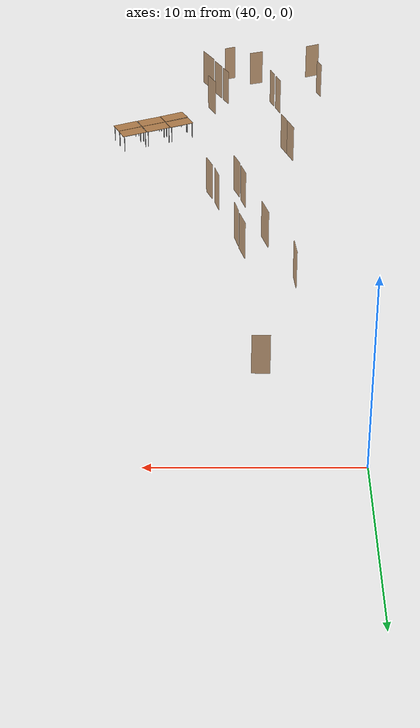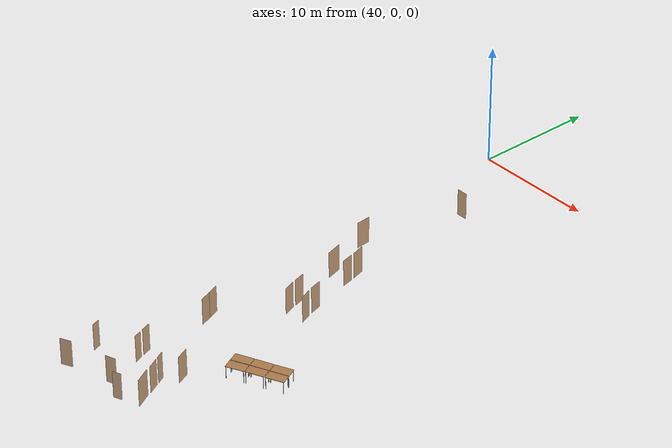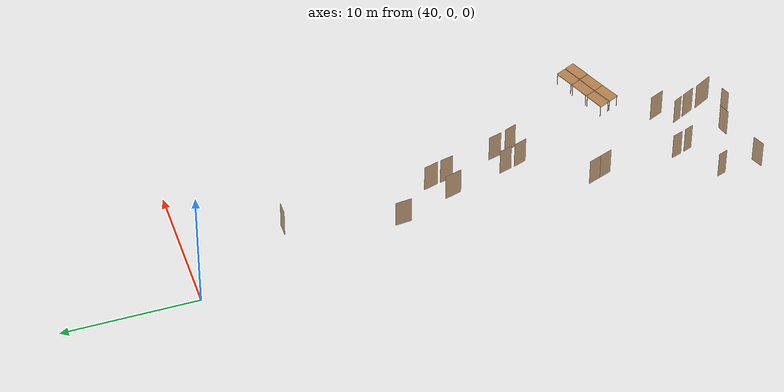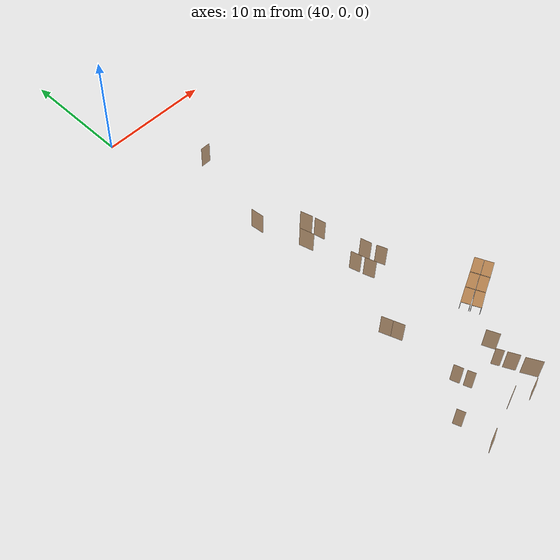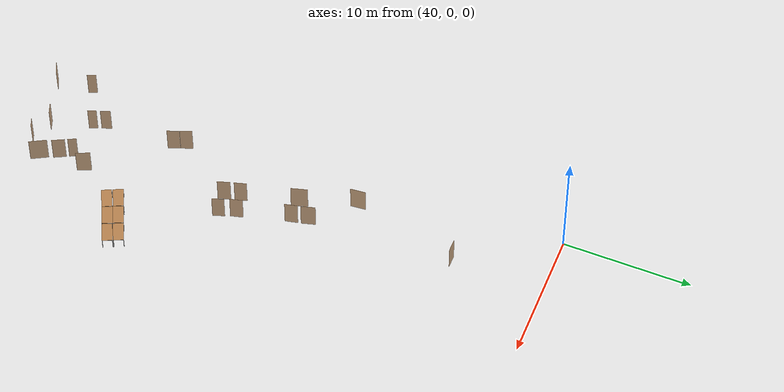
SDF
<sdf version="1.7">
 <world name="world">
  <model name="OpenRobotics/Table_3">
   <static>1</static>
   <link name="link">
    <collision name="surface">
     <pose>0 0 1 0 -0 0</pose>
     <geometry><box><size>1.5 0.8 0.03</size></box></geometry>
     <surface><friction><ode><mu>0.6</mu><mu2>0.6</mu2></ode></friction></surface>
    </collision>
    <visual name="visual1">
     <pose>0 0 1 0 -0 0</pose>
     <geometry><box><size>1.5 0.8 0.03</size></box></geometry>
     <material>
      <script><uri>file://media/materials/scripts/gazebo.material</uri><name>Gazebo/Wood</name></script>
     </material>
    </visual>
    <collision name="front_left_leg">
     <pose>0.68 0.38 0.5 0 -0 0</pose>
     <geometry><cylinder><radius>0.02</radius><length>1</length></cylinder></geometry>
    </collision>
    <visual name="front_left_leg">
     <pose>0.68 0.38 0.5 0 -0 0</pose>
     <geometry><cylinder><radius>0.02</radius><length>1</length></cylinder></geometry>
     <material>
      <script><uri>file://media/materials/scripts/gazebo.material</uri><name>Gazebo/Grey</name></script>
     </material>
    </visual>
    <collision name="front_right_leg">
     <pose>0.68 -0.38 0.5 0 -0 0</pose>
     <geometry><cylinder><radius>0.02</radius><length>1</length></cylinder></geometry>
    </collision>
    <visual name="front_right_leg">
     <pose>0.68 -0.38 0.5 0 -0 0</pose>
     <geometry><cylinder><radius>0.02</radius><length>1</length></cylinder></geometry>
     <material>
      <script><uri>file://media/materials/scripts/gazebo.material</uri><name>Gazebo/Grey</name></script>
     </material>
    </visual>
    <collision name="back_right_leg">
     <pose>-0.68 -0.38 0.5 0 -0 0</pose>
     <geometry><cylinder><radius>0.02</radius><length>1</length></cylinder></geometry>
    </collision>
    <visual name="back_right_leg">
     <pose>-0.68 -0.38 0.5 0 -0 0</pose>
     <geometry><cylinder><radius>0.02</radius><length>1</length></cylinder></geometry>
     <material>
      <script><uri>file://media/materials/scripts/gazebo.material</uri><name>Gazebo/Grey</name></script>
     </material>
    </visual>
    <collision name="back_left_leg">
     <pose>-0.68 0.38 0.5 0 -0 0</pose>
     <geometry><cylinder><radius>0.02</radius><length>1</length></cylinder></geometry>
    </collision>
    <visual name="back_left_leg">
     <pose>-0.68 0.38 0.5 0 -0 0</pose>
     <geometry><cylinder><radius>0.02</radius><length>1</length></cylinder></geometry>
     <material>
      <script><uri>file://media/materials/scripts/gazebo.material</uri><name>Gazebo/Grey</name></script>
     </material>
    </visual>
   </link>
   <pose>49.1187 -32.1514 0 0 -0 0.4303</pose>
  </model>
  <model name="OpenRobotics/Table_4">
   <static>1</static>
   <link name="link">
    <collision name="surface">
     <pose>0 0 1 0 -0 0</pose>
     <geometry><box><size>1.5 0.8 0.03</size></box></geometry>
     <surface><friction><ode><mu>0.6</mu><mu2>0.6</mu2></ode></friction></surface>
    </collision>
    <visual name="visual1">
     <pose>0 0 1 0 -0 0</pose>
     <geometry><box><size>1.5 0.8 0.03</size></box></geometry>
     <material>
      <script><uri>file://media/materials/scripts/gazebo.material</uri><name>Gazebo/Wood</name></script>
     </material>
    </visual>
    <collision name="front_left_leg">
     <pose>0.68 0.38 0.5 0 -0 0</pose>
     <geometry><cylinder><radius>0.02</radius><length>1</length></cylinder></geometry>
    </collision>
    <visual name="front_left_leg">
     <pose>0.68 0.38 0.5 0 -0 0</pose>
     <geometry><cylinder><radius>0.02</radius><length>1</length></cylinder></geometry>
     <material>
      <script><uri>file://media/materials/scripts/gazebo.material</uri><name>Gazebo/Grey</name></script>
     </material>
    </visual>
    <collision name="front_right_leg">
     <pose>0.68 -0.38 0.5 0 -0 0</pose>
     <geometry><cylinder><radius>0.02</radius><length>1</length></cylinder></geometry>
    </collision>
    <visual name="front_right_leg">
     <pose>0.68 -0.38 0.5 0 -0 0</pose>
     <geometry><cylinder><radius>0.02</radius><length>1</length></cylinder></geometry>
     <material>
      <script><uri>file://media/materials/scripts/gazebo.material</uri><name>Gazebo/Grey</name></script>
     </material>
    </visual>
    <collision name="back_right_leg">
     <pose>-0.68 -0.38 0.5 0 -0 0</pose>
     <geometry><cylinder><radius>0.02</radius><length>1</length></cylinder></geometry>
    </collision>
    <visual name="back_right_leg">
     <pose>-0.68 -0.38 0.5 0 -0 0</pose>
     <geometry><cylinder><radius>0.02</radius><length>1</length></cylinder></geometry>
     <material>
      <script><uri>file://media/materials/scripts/gazebo.material</uri><name>Gazebo/Grey</name></script>
     </material>
    </visual>
    <collision name="back_left_leg">
     <pose>-0.68 0.38 0.5 0 -0 0</pose>
     <geometry><cylinder><radius>0.02</radius><length>1</length></cylinder></geometry>
    </collision>
    <visual name="back_left_leg">
     <pose>-0.68 0.38 0.5 0 -0 0</pose>
     <geometry><cylinder><radius>0.02</radius><length>1</length></cylinder></geometry>
     <material>
      <script><uri>file://media/materials/scripts/gazebo.material</uri><name>Gazebo/Grey</name></script>
     </material>
    </visual>
   </link>
   <pose>50.5168 -31.5278 0 0 -0 0.4167</pose>
  </model>
  <model name="OpenRobotics/Table_5">
   <static>1</static>
   <link name="link">
    <collision name="surface">
     <pose>0 0 1 0 -0 0</pose>
     <geometry><box><size>1.5 0.8 0.03</size></box></geometry>
     <surface><friction><ode><mu>0.6</mu><mu2>0.6</mu2></ode></friction></surface>
    </collision>
    <visual name="visual1">
     <pose>0 0 1 0 -0 0</pose>
     <geometry><box><size>1.5 0.8 0.03</size></box></geometry>
     <material>
      <script><uri>file://media/materials/scripts/gazebo.material</uri><name>Gazebo/Wood</name></script>
     </material>
    </visual>
    <collision name="front_left_leg">
     <pose>0.68 0.38 0.5 0 -0 0</pose>
     <geometry><cylinder><radius>0.02</radius><length>1</length></cylinder></geometry>
    </collision>
    <visual name="front_left_leg">
     <pose>0.68 0.38 0.5 0 -0 0</pose>
     <geometry><cylinder><radius>0.02</radius><length>1</length></cylinder></geometry>
     <material>
      <script><uri>file://media/materials/scripts/gazebo.material</uri><name>Gazebo/Grey</name></script>
     </material>
    </visual>
    <collision name="front_right_leg">
     <pose>0.68 -0.38 0.5 0 -0 0</pose>
     <geometry><cylinder><radius>0.02</radius><length>1</length></cylinder></geometry>
    </collision>
    <visual name="front_right_leg">
     <pose>0.68 -0.38 0.5 0 -0 0</pose>
     <geometry><cylinder><radius>0.02</radius><length>1</length></cylinder></geometry>
     <material>
      <script><uri>file://media/materials/scripts/gazebo.material</uri><name>Gazebo/Grey</name></script>
     </material>
    </visual>
    <collision name="back_right_leg">
     <pose>-0.68 -0.38 0.5 0 -0 0</pose>
     <geometry><cylinder><radius>0.02</radius><length>1</length></cylinder></geometry>
    </collision>
    <visual name="back_right_leg">
     <pose>-0.68 -0.38 0.5 0 -0 0</pose>
     <geometry><cylinder><radius>0.02</radius><length>1</length></cylinder></geometry>
     <material>
      <script><uri>file://media/materials/scripts/gazebo.material</uri><name>Gazebo/Grey</name></script>
     </material>
    </visual>
    <collision name="back_left_leg">
     <pose>-0.68 0.38 0.5 0 -0 0</pose>
     <geometry><cylinder><radius>0.02</radius><length>1</length></cylinder></geometry>
    </collision>
    <visual name="back_left_leg">
     <pose>-0.68 0.38 0.5 0 -0 0</pose>
     <geometry><cylinder><radius>0.02</radius><length>1</length></cylinder></geometry>
     <material>
      <script><uri>file://media/materials/scripts/gazebo.material</uri><name>Gazebo/Grey</name></script>
     </material>
    </visual>
   </link>
   <pose>51.9247 -30.8942 0 0 -0 0.4347</pose>
  </model>
  <model name="OpenRobotics/Table_6">
   <static>1</static>
   <link name="link">
    <collision name="surface">
     <pose>0 0 1 0 -0 0</pose>
     <geometry><box><size>1.5 0.8 0.03</size></box></geometry>
     <surface><friction><ode><mu>0.6</mu><mu2>0.6</mu2></ode></friction></surface>
    </collision>
    <visual name="visual1">
     <pose>0 0 1 0 -0 0</pose>
     <geometry><box><size>1.5 0.8 0.03</size></box></geometry>
     <material>
      <script><uri>file://media/materials/scripts/gazebo.material</uri><name>Gazebo/Wood</name></script>
     </material>
    </visual>
    <collision name="front_left_leg">
     <pose>0.68 0.38 0.5 0 -0 0</pose>
     <geometry><cylinder><radius>0.02</radius><length>1</length></cylinder></geometry>
    </collision>
    <visual name="front_left_leg">
     <pose>0.68 0.38 0.5 0 -0 0</pose>
     <geometry><cylinder><radius>0.02</radius><length>1</length></cylinder></geometry>
     <material>
      <script><uri>file://media/materials/scripts/gazebo.material</uri><name>Gazebo/Grey</name></script>
     </material>
    </visual>
    <collision name="front_right_leg">
     <pose>0.68 -0.38 0.5 0 -0 0</pose>
     <geometry><cylinder><radius>0.02</radius><length>1</length></cylinder></geometry>
    </collision>
    <visual name="front_right_leg">
     <pose>0.68 -0.38 0.5 0 -0 0</pose>
     <geometry><cylinder><radius>0.02</radius><length>1</length></cylinder></geometry>
     <material>
      <script><uri>file://media/materials/scripts/gazebo.material</uri><name>Gazebo/Grey</name></script>
     </material>
    </visual>
    <collision name="back_right_leg">
     <pose>-0.68 -0.38 0.5 0 -0 0</pose>
     <geometry><cylinder><radius>0.02</radius><length>1</length></cylinder></geometry>
    </collision>
    <visual name="back_right_leg">
     <pose>-0.68 -0.38 0.5 0 -0 0</pose>
     <geometry><cylinder><radius>0.02</radius><length>1</length></cylinder></geometry>
     <material>
      <script><uri>file://media/materials/scripts/gazebo.material</uri><name>Gazebo/Grey</name></script>
     </material>
    </visual>
    <collision name="back_left_leg">
     <pose>-0.68 0.38 0.5 0 -0 0</pose>
     <geometry><cylinder><radius>0.02</radius><length>1</length></cylinder></geometry>
    </collision>
    <visual name="back_left_leg">
     <pose>-0.68 0.38 0.5 0 -0 0</pose>
     <geometry><cylinder><radius>0.02</radius><length>1</length></cylinder></geometry>
     <material>
      <script><uri>file://media/materials/scripts/gazebo.material</uri><name>Gazebo/Grey</name></script>
     </material>
    </visual>
   </link>
   <pose>52.2667 -31.6485 0 0 -0 0.4389</pose>
  </model>
  <model name="OpenRobotics/Table_7">
   <static>1</static>
   <link name="link">
    <collision name="surface">
     <pose>0 0 1 0 -0 0</pose>
     <geometry><box><size>1.5 0.8 0.03</size></box></geometry>
     <surface><friction><ode><mu>0.6</mu><mu2>0.6</mu2></ode></friction></surface>
    </collision>
    <visual name="visual1">
     <pose>0 0 1 0 -0 0</pose>
     <geometry><box><size>1.5 0.8 0.03</size></box></geometry>
     <material>
      <script><uri>file://media/materials/scripts/gazebo.material</uri><name>Gazebo/Wood</name></script>
     </material>
    </visual>
    <collision name="front_left_leg">
     <pose>0.68 0.38 0.5 0 -0 0</pose>
     <geometry><cylinder><radius>0.02</radius><length>1</length></cylinder></geometry>
    </collision>
    <visual name="front_left_leg">
     <pose>0.68 0.38 0.5 0 -0 0</pose>
     <geometry><cylinder><radius>0.02</radius><length>1</length></cylinder></geometry>
     <material>
      <script><uri>file://media/materials/scripts/gazebo.material</uri><name>Gazebo/Grey</name></script>
     </material>
    </visual>
    <collision name="front_right_leg">
     <pose>0.68 -0.38 0.5 0 -0 0</pose>
     <geometry><cylinder><radius>0.02</radius><length>1</length></cylinder></geometry>
    </collision>
    <visual name="front_right_leg">
     <pose>0.68 -0.38 0.5 0 -0 0</pose>
     <geometry><cylinder><radius>0.02</radius><length>1</length></cylinder></geometry>
     <material>
      <script><uri>file://media/materials/scripts/gazebo.material</uri><name>Gazebo/Grey</name></script>
     </material>
    </visual>
    <collision name="back_right_leg">
     <pose>-0.68 -0.38 0.5 0 -0 0</pose>
     <geometry><cylinder><radius>0.02</radius><length>1</length></cylinder></geometry>
    </collision>
    <visual name="back_right_leg">
     <pose>-0.68 -0.38 0.5 0 -0 0</pose>
     <geometry><cylinder><radius>0.02</radius><length>1</length></cylinder></geometry>
     <material>
      <script><uri>file://media/materials/scripts/gazebo.material</uri><name>Gazebo/Grey</name></script>
     </material>
    </visual>
    <collision name="back_left_leg">
     <pose>-0.68 0.38 0.5 0 -0 0</pose>
     <geometry><cylinder><radius>0.02</radius><length>1</length></cylinder></geometry>
    </collision>
    <visual name="back_left_leg">
     <pose>-0.68 0.38 0.5 0 -0 0</pose>
     <geometry><cylinder><radius>0.02</radius><length>1</length></cylinder></geometry>
     <material>
      <script><uri>file://media/materials/scripts/gazebo.material</uri><name>Gazebo/Grey</name></script>
     </material>
    </visual>
   </link>
   <pose>50.8587 -32.2821 0 0 -0 0.4288</pose>
  </model>
  <model name="OpenRobotics/Table_8">
   <static>1</static>
   <link name="link">
    <collision name="surface">
     <pose>0 0 1 0 -0 0</pose>
     <geometry><box><size>1.5 0.8 0.03</size></box></geometry>
     <surface><friction><ode><mu>0.6</mu><mu2>0.6</mu2></ode></friction></surface>
    </collision>
    <visual name="visual1">
     <pose>0 0 1 0 -0 0</pose>
     <geometry><box><size>1.5 0.8 0.03</size></box></geometry>
     <material>
      <script><uri>file://media/materials/scripts/gazebo.material</uri><name>Gazebo/Wood</name></script>
     </material>
    </visual>
    <collision name="front_left_leg">
     <pose>0.68 0.38 0.5 0 -0 0</pose>
     <geometry><cylinder><radius>0.02</radius><length>1</length></cylinder></geometry>
    </collision>
    <visual name="front_left_leg">
     <pose>0.68 0.38 0.5 0 -0 0</pose>
     <geometry><cylinder><radius>0.02</radius><length>1</length></cylinder></geometry>
     <material>
      <script><uri>file://media/materials/scripts/gazebo.material</uri><name>Gazebo/Grey</name></script>
     </material>
    </visual>
    <collision name="front_right_leg">
     <pose>0.68 -0.38 0.5 0 -0 0</pose>
     <geometry><cylinder><radius>0.02</radius><length>1</length></cylinder></geometry>
    </collision>
    <visual name="front_right_leg">
     <pose>0.68 -0.38 0.5 0 -0 0</pose>
     <geometry><cylinder><radius>0.02</radius><length>1</length></cylinder></geometry>
     <material>
      <script><uri>file://media/materials/scripts/gazebo.material</uri><name>Gazebo/Grey</name></script>
     </material>
    </visual>
    <collision name="back_right_leg">
     <pose>-0.68 -0.38 0.5 0 -0 0</pose>
     <geometry><cylinder><radius>0.02</radius><length>1</length></cylinder></geometry>
    </collision>
    <visual name="back_right_leg">
     <pose>-0.68 -0.38 0.5 0 -0 0</pose>
     <geometry><cylinder><radius>0.02</radius><length>1</length></cylinder></geometry>
     <material>
      <script><uri>file://media/materials/scripts/gazebo.material</uri><name>Gazebo/Grey</name></script>
     </material>
    </visual>
    <collision name="back_left_leg">
     <pose>-0.68 0.38 0.5 0 -0 0</pose>
     <geometry><cylinder><radius>0.02</radius><length>1</length></cylinder></geometry>
    </collision>
    <visual name="back_left_leg">
     <pose>-0.68 0.38 0.5 0 -0 0</pose>
     <geometry><cylinder><radius>0.02</radius><length>1</length></cylinder></geometry>
     <material>
      <script><uri>file://media/materials/scripts/gazebo.material</uri><name>Gazebo/Grey</name></script>
     </material>
    </visual>
   </link>
   <pose>49.4808 -32.9359 0 0 -0 0.4547</pose>
  </model>
  <model name="D1">
   <pose>46.734 -38.1165 0 0 -0 -1.09898</pose>
   <link name="right">
    <pose>0 0 1.11 0 -0 0</pose>
    <visual name="right_visual">
     <geometry><box><size>0.995473 0.03 2.2</size></box></geometry>
     <material><ambient>0.5 0.25 0 0.6</ambient><diffuse>0.5 0.25 0 0.6</diffuse></material>
    </visual>
    <collision name="right_collision">
     <geometry><box><size>0.995473 0.03 2.2</size></box></geometry>
     <surface><contact><collide_bitmask>2</collide_bitmask></contact></surface>
    </collision>
    <inertial>
     <mass>50</mass>
     <inertia><ixx>20.1704</ixx><iyy>24.2957</iyy><izz>4.13277</izz><ixy>0</ixy><ixz>0</ixz><iyz>0</iyz></inertia>
    </inertial>
   </link>
   <joint name="right_joint" type="revolute">
    <parent>world</parent>
    <child>right</child>
    <axis>
     <xyz>0 0 1</xyz>
     <limit><lower>0</lower><upper>1.57</upper></limit>
     <dynamics><spring_reference>0</spring_reference><spring_stiffness>0</spring_stiffness></dynamics>
    </axis>
    <pose>0.502736 0 0 0 -0 0</pose>
   </joint>
   <plugin name="door_D1" filename="libdoor.so">
    <v_max_door>0.5</v_max_door>
    <a_max_door>0.3</a_max_door>
    <a_nom_door>0.15</a_nom_door>
    <dx_min_door>0.01</dx_min_door>
    <f_max_door>500.0</f_max_door>
    <door name="D1" type="SwingDoor" left_joint_name="empty_joint" right_joint_name="right_joint"/>
   </plugin>
  </model>
  <model name="D2">
   <pose>40.5795 -41.0884 0 0 0 -2.71335</pose>
   <link name="right">
    <pose>0 0 1.11 0 -0 0</pose>
    <visual name="right_visual">
     <geometry><box><size>0.922305 0.03 2.2</size></box></geometry>
     <material><ambient>0.5 0.25 0 0.6</ambient><diffuse>0.5 0.25 0 0.6</diffuse></material>
    </visual>
    <collision name="right_collision">
     <geometry><box><size>0.922305 0.03 2.2</size></box></geometry>
     <surface><contact><collide_bitmask>2</collide_bitmask></contact></surface>
    </collision>
    <inertial>
     <mass>50</mass>
     <inertia><ixx>20.1704</ixx><iyy>23.711</iyy><izz>3.54811</izz><ixy>0</ixy><ixz>0</ixz><iyz>0</iyz></inertia>
    </inertial>
   </link>
   <joint name="right_joint" type="revolute">
    <parent>world</parent>
    <child>right</child>
    <axis>
     <xyz>0 0 1</xyz>
     <limit><lower>0</lower><upper>1.57</upper></limit>
     <dynamics><spring_reference>0</spring_reference><spring_stiffness>0</spring_stiffness></dynamics>
    </axis>
    <pose>0.466153 0 0 0 -0 0</pose>
   </joint>
   <plugin name="door_D2" filename="libdoor.so">
    <v_max_door>0.5</v_max_door>
    <a_max_door>0.3</a_max_door>
    <a_nom_door>0.15</a_nom_door>
    <dx_min_door>0.01</dx_min_door>
    <f_max_door>500.0</f_max_door>
    <door name="D2" type="SwingDoor" left_joint_name="empty_joint" right_joint_name="right_joint"/>
   </plugin>
  </model>
  <model name="D3">
   <pose>44.2806 -39.9356 -0 0 0 -2.80852</pose>
   <link name="right">
    <pose>0 0 1.11 0 -0 0</pose>
    <visual name="right_visual">
     <geometry><box><size>0.838853 0.03 2.2</size></box></geometry>
     <material><ambient>0.5 0.25 0 0.6</ambient><diffuse>0.5 0.25 0 0.6</diffuse></material>
    </visual>
    <collision name="right_collision">
     <geometry><box><size>0.838853 0.03 2.2</size></box></geometry>
     <surface><contact><collide_bitmask>2</collide_bitmask></contact></surface>
    </collision>
    <inertial>
     <mass>50</mass>
     <inertia><ixx>20.1704</ixx><iyy>23.0986</iyy><izz>2.93572</izz><ixy>0</ixy><ixz>0</ixz><iyz>0</iyz></inertia>
    </inertial>
   </link>
   <joint name="right_joint" type="revolute">
    <parent>world</parent>
    <child>right</child>
    <axis>
     <xyz>0 0 1</xyz>
     <limit><lower>0</lower><upper>1.57</upper></limit>
     <dynamics><spring_reference>0</spring_reference><spring_stiffness>0</spring_stiffness></dynamics>
    </axis>
    <pose>0.424426 0 0 0 -0 0</pose>
   </joint>
   <plugin name="door_D3" filename="libdoor.so">
    <v_max_door>0.5</v_max_door>
    <a_max_door>0.3</a_max_door>
    <a_nom_door>0.15</a_nom_door>
    <dx_min_door>0.01</dx_min_door>
    <f_max_door>500.0</f_max_door>
    <door name="D3" type="SwingDoor" left_joint_name="empty_joint" right_joint_name="right_joint"/>
   </plugin>
  </model>
  <model name="D4">
   <pose>46.2677 -37.1758 -0 0 0 -1.0969</pose>
   <link name="right">
    <pose>0 0 1.11 0 -0 0</pose>
    <visual name="right_visual">
     <geometry><box><size>0.672919 0.03 2.2</size></box></geometry>
     <material><ambient>0.5 0.25 0 0.6</ambient><diffuse>0.5 0.25 0 0.6</diffuse></material>
    </visual>
    <collision name="right_collision">
     <geometry><box><size>0.672919 0.03 2.2</size></box></geometry>
     <surface><contact><collide_bitmask>2</collide_bitmask></contact></surface>
    </collision>
    <inertial>
     <mass>50</mass>
     <inertia><ixx>20.1704</ixx><iyy>22.0534</iyy><izz>1.8905</izz><ixy>0</ixy><ixz>0</ixz><iyz>0</iyz></inertia>
    </inertial>
   </link>
   <joint name="right_joint" type="revolute">
    <parent>world</parent>
    <child>right</child>
    <axis>
     <xyz>0 0 1</xyz>
     <limit><lower>0</lower><upper>1.57</upper></limit>
     <dynamics><spring_reference>0</spring_reference><spring_stiffness>0</spring_stiffness></dynamics>
    </axis>
    <pose>0.34146 0 0 0 -0 0</pose>
   </joint>
   <plugin name="door_D4" filename="libdoor.so">
    <v_max_door>0.5</v_max_door>
    <a_max_door>0.3</a_max_door>
    <a_nom_door>0.15</a_nom_door>
    <dx_min_door>0.01</dx_min_door>
    <f_max_door>500.0</f_max_door>
    <door name="D4" type="SwingDoor" left_joint_name="empty_joint" right_joint_name="right_joint"/>
   </plugin>
  </model>
  <model name="D5">
   <pose>47.1461 -35.8918 0 0 -0 -1.15391</pose>
   <link name="right">
    <pose>0 0 1.11 0 -0 0</pose>
    <visual name="right_visual">
     <geometry><box><size>1.10714 0.03 2.2</size></box></geometry>
     <material><ambient>0.5 0.25 0 0.6</ambient><diffuse>0.5 0.25 0 0.6</diffuse></material>
    </visual>
    <collision name="right_collision">
     <geometry><box><size>1.10714 0.03 2.2</size></box></geometry>
     <surface><contact><collide_bitmask>2</collide_bitmask></contact></surface>
    </collision>
    <inertial>
     <mass>50</mass>
     <inertia><ixx>20.1704</ixx><iyy>25.274</iyy><izz>5.11105</izz><ixy>0</ixy><ixz>0</ixz><iyz>0</iyz></inertia>
    </inertial>
   </link>
   <joint name="right_joint" type="revolute">
    <parent>world</parent>
    <child>right</child>
    <axis>
     <xyz>0 0 -1</xyz>
     <limit><lower>0</lower><upper>1.57</upper></limit>
     <dynamics><spring_reference>0</spring_reference><spring_stiffness>0</spring_stiffness></dynamics>
    </axis>
    <pose>0.558568 0 0 0 -0 0</pose>
   </joint>
   <plugin name="door_D5" filename="libdoor.so">
    <v_max_door>0.5</v_max_door>
    <a_max_door>0.3</a_max_door>
    <a_nom_door>0.15</a_nom_door>
    <dx_min_door>0.01</dx_min_door>
    <f_max_door>500.0</f_max_door>
    <door name="D5" type="SwingDoor" left_joint_name="empty_joint" right_joint_name="right_joint"/>
   </plugin>
  </model>
  <model name="D10">
   <pose>47.3834 -39.5003 -0 -0 -0 -1.07964</pose>
   <link name="right">
    <pose>0 0 1.11 0 -0 0</pose>
    <visual name="right_visual">
     <geometry><box><size>1.38727 0.03 2.2</size></box></geometry>
     <material><ambient>0.5 0.25 0 0.6</ambient><diffuse>0.5 0.25 0 0.6</diffuse></material>
    </visual>
    <collision name="right_collision">
     <geometry><box><size>1.38727 0.03 2.2</size></box></geometry>
     <surface><contact><collide_bitmask>2</collide_bitmask></contact></surface>
    </collision>
    <inertial>
     <mass>50</mass>
     <inertia><ixx>20.1704</ixx><iyy>28.1855</iyy><izz>8.02261</izz><ixy>0</ixy><ixz>0</ixz><iyz>0</iyz></inertia>
    </inertial>
   </link>
   <joint name="right_joint" type="revolute">
    <parent>world</parent>
    <child>right</child>
    <axis>
     <xyz>0 0 1</xyz>
     <limit><lower>0</lower><upper>1.57</upper></limit>
     <dynamics><spring_reference>0</spring_reference><spring_stiffness>0</spring_stiffness></dynamics>
    </axis>
    <pose>0.698637 0 0 0 -0 0</pose>
   </joint>
   <plugin name="door_D10" filename="libdoor.so">
    <v_max_door>0.5</v_max_door>
    <a_max_door>0.3</a_max_door>
    <a_nom_door>0.15</a_nom_door>
    <dx_min_door>0.01</dx_min_door>
    <f_max_door>500.0</f_max_door>
    <door name="D10" type="SwingDoor" left_joint_name="empty_joint" right_joint_name="right_joint"/>
   </plugin>
  </model>
  <model name="D11">
   <pose>45.9919 -40.6742 0 0 -0 0.393065</pose>
   <link name="right">
    <pose>0 0 1.11 0 -0 0</pose>
    <visual name="right_visual">
     <geometry><box><size>0.692377 0.03 2.2</size></box></geometry>
     <material><ambient>0.5 0.25 0 0.6</ambient><diffuse>0.5 0.25 0 0.6</diffuse></material>
    </visual>
    <collision name="right_collision">
     <geometry><box><size>0.692377 0.03 2.2</size></box></geometry>
     <surface><contact><collide_bitmask>2</collide_bitmask></contact></surface>
    </collision>
    <inertial>
     <mass>50</mass>
     <inertia><ixx>20.1704</ixx><iyy>22.1641</iyy><izz>2.00119</izz><ixy>0</ixy><ixz>0</ixz><iyz>0</iyz></inertia>
    </inertial>
   </link>
   <joint name="right_joint" type="revolute">
    <parent>world</parent>
    <child>right</child>
    <axis>
     <xyz>0 0 1</xyz>
     <limit><lower>0</lower><upper>1.57</upper></limit>
     <dynamics><spring_reference>0</spring_reference><spring_stiffness>0</spring_stiffness></dynamics>
    </axis>
    <pose>0.351189 0 0 0 -0 0</pose>
   </joint>
   <plugin name="door_D11" filename="libdoor.so">
    <v_max_door>0.5</v_max_door>
    <a_max_door>0.3</a_max_door>
    <a_nom_door>0.15</a_nom_door>
    <dx_min_door>0.01</dx_min_door>
    <f_max_door>500.0</f_max_door>
    <door name="D11" type="SwingDoor" left_joint_name="empty_joint" right_joint_name="right_joint"/>
   </plugin>
  </model>
  <model name="D12">
   <pose>47.2222 -24.83 0 0 -0 -1.20677</pose>
   <link name="right">
    <pose>0 0 1.11 0 -0 0</pose>
    <visual name="right_visual">
     <geometry><box><size>0.929981 0.03 2.2</size></box></geometry>
     <material><ambient>0.5 0.25 0 0.6</ambient><diffuse>0.5 0.25 0 0.6</diffuse></material>
    </visual>
    <collision name="right_collision">
     <geometry><box><size>0.929981 0.03 2.2</size></box></geometry>
     <surface><contact><collide_bitmask>2</collide_bitmask></contact></surface>
    </collision>
    <inertial>
     <mass>50</mass>
     <inertia><ixx>20.1704</ixx><iyy>23.7703</iyy><izz>3.60736</izz><ixy>0</ixy><ixz>0</ixz><iyz>0</iyz></inertia>
    </inertial>
   </link>
   <joint name="right_joint" type="revolute">
    <parent>world</parent>
    <child>right</child>
    <axis>
     <xyz>0 0 1</xyz>
     <limit><lower>0</lower><upper>1.57</upper></limit>
     <dynamics><spring_reference>0</spring_reference><spring_stiffness>0</spring_stiffness></dynamics>
    </axis>
    <pose>0.469991 0 0 0 -0 0</pose>
   </joint>
   <plugin name="door_D12" filename="libdoor.so">
    <v_max_door>0.5</v_max_door>
    <a_max_door>0.3</a_max_door>
    <a_nom_door>0.15</a_nom_door>
    <dx_min_door>0.01</dx_min_door>
    <f_max_door>500.0</f_max_door>
    <door name="D12" type="SwingDoor" left_joint_name="empty_joint" right_joint_name="right_joint"/>
   </plugin>
  </model>
  <model name="D13">
   <pose>46.7861 -23.541 -0 0 0 -1.31886</pose>
   <link name="right">
    <pose>0 0 1.11 0 -0 0</pose>
    <visual name="right_visual">
     <geometry><box><size>0.981892 0.03 2.2</size></box></geometry>
     <material><ambient>0.5 0.25 0 0.6</ambient><diffuse>0.5 0.25 0 0.6</diffuse></material>
    </visual>
    <collision name="right_collision">
     <geometry><box><size>0.981892 0.03 2.2</size></box></geometry>
     <surface><contact><collide_bitmask>2</collide_bitmask></contact></surface>
    </collision>
    <inertial>
     <mass>50</mass>
     <inertia><ixx>20.1704</ixx><iyy>24.1838</iyy><izz>4.02088</izz><ixy>0</ixy><ixz>0</ixz><iyz>0</iyz></inertia>
    </inertial>
   </link>
   <joint name="right_joint" type="revolute">
    <parent>world</parent>
    <child>right</child>
    <axis>
     <xyz>0 0 -1</xyz>
     <limit><lower>0</lower><upper>1.57</upper></limit>
     <dynamics><spring_reference>0</spring_reference><spring_stiffness>0</spring_stiffness></dynamics>
    </axis>
    <pose>0.495946 0 0 0 -0 0</pose>
   </joint>
   <plugin name="door_D13" filename="libdoor.so">
    <v_max_door>0.5</v_max_door>
    <a_max_door>0.3</a_max_door>
    <a_nom_door>0.15</a_nom_door>
    <dx_min_door>0.01</dx_min_door>
    <f_max_door>500.0</f_max_door>
    <door name="D13" type="SwingDoor" left_joint_name="empty_joint" right_joint_name="right_joint"/>
   </plugin>
  </model>
  <model name="D14">
   <pose>45.7058 -19.5679 0 0 0 -1.3544</pose>
   <link name="right">
    <pose>0 0 1.11 0 -0 0</pose>
    <visual name="right_visual">
     <geometry><box><size>0.986867 0.03 2.2</size></box></geometry>
     <material><ambient>0.5 0.25 0 0.6</ambient><diffuse>0.5 0.25 0 0.6</diffuse></material>
    </visual>
    <collision name="right_collision">
     <geometry><box><size>0.986867 0.03 2.2</size></box></geometry>
     <surface><contact><collide_bitmask>2</collide_bitmask></contact></surface>
    </collision>
    <inertial>
     <mass>50</mass>
     <inertia><ixx>20.1704</ixx><iyy>24.2246</iyy><izz>4.0617</izz><ixy>0</ixy><ixz>0</ixz><iyz>0</iyz></inertia>
    </inertial>
   </link>
   <joint name="right_joint" type="revolute">
    <parent>world</parent>
    <child>right</child>
    <axis>
     <xyz>0 0 1</xyz>
     <limit><lower>0</lower><upper>1.57</upper></limit>
     <dynamics><spring_reference>0</spring_reference><spring_stiffness>0</spring_stiffness></dynamics>
    </axis>
    <pose>0.498434 0 0 0 -0 0</pose>
   </joint>
   <plugin name="door_D14" filename="libdoor.so">
    <v_max_door>0.5</v_max_door>
    <a_max_door>0.3</a_max_door>
    <a_nom_door>0.15</a_nom_door>
    <dx_min_door>0.01</dx_min_door>
    <f_max_door>500.0</f_max_door>
    <door name="D14" type="SwingDoor" left_joint_name="empty_joint" right_joint_name="right_joint"/>
   </plugin>
  </model>
  <model name="D15">
   <pose>45.4079 -18.3231 0 0 -0 -1.29664</pose>
   <link name="right">
    <pose>0 0 1.11 0 -0 0</pose>
    <visual name="right_visual">
     <geometry><box><size>1.10514 0.03 2.2</size></box></geometry>
     <material><ambient>0.5 0.25 0 0.6</ambient><diffuse>0.5 0.25 0 0.6</diffuse></material>
    </visual>
    <collision name="right_collision">
     <geometry><box><size>1.10514 0.03 2.2</size></box></geometry>
     <surface><contact><collide_bitmask>2</collide_bitmask></contact></surface>
    </collision>
    <inertial>
     <mass>50</mass>
     <inertia><ixx>20.1704</ixx><iyy>25.2556</iyy><izz>5.09265</izz><ixy>0</ixy><ixz>0</ixz><iyz>0</iyz></inertia>
    </inertial>
   </link>
   <joint name="right_joint" type="revolute">
    <parent>world</parent>
    <child>right</child>
    <axis>
     <xyz>0 0 -1</xyz>
     <limit><lower>0</lower><upper>1.57</upper></limit>
     <dynamics><spring_reference>0</spring_reference><spring_stiffness>0</spring_stiffness></dynamics>
    </axis>
    <pose>0.55757 0 0 0 -0 0</pose>
   </joint>
   <plugin name="door_D15" filename="libdoor.so">
    <v_max_door>0.5</v_max_door>
    <a_max_door>0.3</a_max_door>
    <a_nom_door>0.15</a_nom_door>
    <dx_min_door>0.01</dx_min_door>
    <f_max_door>500.0</f_max_door>
    <door name="D15" type="SwingDoor" left_joint_name="empty_joint" right_joint_name="right_joint"/>
   </plugin>
  </model>
  <model name="D16">
   <pose>42.6679 -15.4188 0 -0 -0 -1.47952</pose>
   <link name="right">
    <pose>0 0 1.11 0 -0 0</pose>
    <visual name="right_visual">
     <geometry><box><size>1.1816 0.03 2.2</size></box></geometry>
     <material><ambient>0.5 0.25 0 0.6</ambient><diffuse>0.5 0.25 0 0.6</diffuse></material>
    </visual>
    <collision name="right_collision">
     <geometry><box><size>1.1816 0.03 2.2</size></box></geometry>
     <surface><contact><collide_bitmask>2</collide_bitmask></contact></surface>
    </collision>
    <inertial>
     <mass>50</mass>
     <inertia><ixx>20.1704</ixx><iyy>25.9841</iyy><izz>5.82114</izz><ixy>0</ixy><ixz>0</ixz><iyz>0</iyz></inertia>
    </inertial>
   </link>
   <joint name="right_joint" type="revolute">
    <parent>world</parent>
    <child>right</child>
    <axis>
     <xyz>0 0 1</xyz>
     <limit><lower>0</lower><upper>1.57</upper></limit>
     <dynamics><spring_reference>0</spring_reference><spring_stiffness>0</spring_stiffness></dynamics>
    </axis>
    <pose>0.595799 0 0 0 -0 0</pose>
   </joint>
   <plugin name="door_D16" filename="libdoor.so">
    <v_max_door>0.5</v_max_door>
    <a_max_door>0.3</a_max_door>
    <a_nom_door>0.15</a_nom_door>
    <dx_min_door>0.01</dx_min_door>
    <f_max_door>500.0</f_max_door>
    <door name="D16" type="SwingDoor" left_joint_name="empty_joint" right_joint_name="right_joint"/>
   </plugin>
  </model>
  <model name="D17">
   <pose>44.1506 -19.5573 -0 0 -0 1.84229</pose>
   <link name="right">
    <pose>0 0 1.11 0 -0 0</pose>
    <visual name="right_visual">
     <geometry><box><size>1.28448 0.03 2.2</size></box></geometry>
     <material><ambient>0.5 0.25 0 0.6</ambient><diffuse>0.5 0.25 0 0.6</diffuse></material>
    </visual>
    <collision name="right_collision">
     <geometry><box><size>1.28448 0.03 2.2</size></box></geometry>
     <surface><contact><collide_bitmask>2</collide_bitmask></contact></surface>
    </collision>
    <inertial>
     <mass>50</mass>
     <inertia><ixx>20.1704</ixx><iyy>27.0412</iyy><izz>6.87827</izz><ixy>0</ixy><ixz>0</ixz><iyz>0</iyz></inertia>
    </inertial>
   </link>
   <joint name="right_joint" type="revolute">
    <parent>world</parent>
    <child>right</child>
    <axis>
     <xyz>0 0 -1</xyz>
     <limit><lower>0</lower><upper>1.57</upper></limit>
     <dynamics><spring_reference>0</spring_reference><spring_stiffness>0</spring_stiffness></dynamics>
    </axis>
    <pose>0.647239 0 0 0 -0 0</pose>
   </joint>
   <plugin name="door_D17" filename="libdoor.so">
    <v_max_door>0.5</v_max_door>
    <a_max_door>0.3</a_max_door>
    <a_nom_door>0.15</a_nom_door>
    <dx_min_door>0.01</dx_min_door>
    <f_max_door>500.0</f_max_door>
    <door name="D17" type="SwingDoor" left_joint_name="empty_joint" right_joint_name="right_joint"/>
   </plugin>
  </model>
  <model name="D18">
   <pose>45.2939 -23.8308 0 0 -0 1.84233</pose>
   <link name="right">
    <pose>0 0 1.11 0 -0 0</pose>
    <visual name="right_visual">
     <geometry><box><size>0.954162 0.03 2.2</size></box></geometry>
     <material><ambient>0.5 0.25 0 0.6</ambient><diffuse>0.5 0.25 0 0.6</diffuse></material>
    </visual>
    <collision name="right_collision">
     <geometry><box><size>0.954162 0.03 2.2</size></box></geometry>
     <surface><contact><collide_bitmask>2</collide_bitmask></contact></surface>
    </collision>
    <inertial>
     <mass>50</mass>
     <inertia><ixx>20.1704</ixx><iyy>23.9601</iyy><izz>3.79719</izz><ixy>0</ixy><ixz>0</ixz><iyz>0</iyz></inertia>
    </inertial>
   </link>
   <joint name="right_joint" type="revolute">
    <parent>world</parent>
    <child>right</child>
    <axis>
     <xyz>0 0 1</xyz>
     <limit><lower>0</lower><upper>1.57</upper></limit>
     <dynamics><spring_reference>0</spring_reference><spring_stiffness>0</spring_stiffness></dynamics>
    </axis>
    <pose>0.482081 0 0 0 -0 0</pose>
   </joint>
   <plugin name="door_D18" filename="libdoor.so">
    <v_max_door>0.5</v_max_door>
    <a_max_door>0.3</a_max_door>
    <a_nom_door>0.15</a_nom_door>
    <dx_min_door>0.01</dx_min_door>
    <f_max_door>500.0</f_max_door>
    <door name="D18" type="SwingDoor" left_joint_name="empty_joint" right_joint_name="right_joint"/>
   </plugin>
  </model>
  <model name="D19">
   <pose>45.6474 -25.0325 0 0 -0 1.90388</pose>
   <link name="right">
    <pose>0 0 1.11 0 -0 0</pose>
    <visual name="right_visual">
     <geometry><box><size>0.992411 0.03 2.2</size></box></geometry>
     <material><ambient>0.5 0.25 0 0.6</ambient><diffuse>0.5 0.25 0 0.6</diffuse></material>
    </visual>
    <collision name="right_collision">
     <geometry><box><size>0.992411 0.03 2.2</size></box></geometry>
     <surface><contact><collide_bitmask>2</collide_bitmask></contact></surface>
    </collision>
    <inertial>
     <mass>50</mass>
     <inertia><ixx>20.1704</ixx><iyy>24.2703</iyy><izz>4.10741</izz><ixy>0</ixy><ixz>0</ixz><iyz>0</iyz></inertia>
    </inertial>
   </link>
   <joint name="right_joint" type="revolute">
    <parent>world</parent>
    <child>right</child>
    <axis>
     <xyz>0 0 -1</xyz>
     <limit><lower>0</lower><upper>1.57</upper></limit>
     <dynamics><spring_reference>0</spring_reference><spring_stiffness>0</spring_stiffness></dynamics>
    </axis>
    <pose>0.501205 0 0 0 -0 0</pose>
   </joint>
   <plugin name="door_D19" filename="libdoor.so">
    <v_max_door>0.5</v_max_door>
    <a_max_door>0.3</a_max_door>
    <a_nom_door>0.15</a_nom_door>
    <dx_min_door>0.01</dx_min_door>
    <f_max_door>500.0</f_max_door>
    <door name="D19" type="SwingDoor" left_joint_name="empty_joint" right_joint_name="right_joint"/>
   </plugin>
  </model>
  <model name="D20">
   <pose>40.2781 -38.2815 0 0 -0 -1.22522</pose>
   <link name="right">
    <pose>0 0 1.11 0 -0 0</pose>
    <visual name="right_visual">
     <geometry><box><size>0.695847 0.03 2.2</size></box></geometry>
     <material><ambient>0.5 0.25 0 0.6</ambient><diffuse>0.5 0.25 0 0.6</diffuse></material>
    </visual>
    <collision name="right_collision">
     <geometry><box><size>0.695847 0.03 2.2</size></box></geometry>
     <surface><contact><collide_bitmask>2</collide_bitmask></contact></surface>
    </collision>
    <inertial>
     <mass>50</mass>
     <inertia><ixx>20.1704</ixx><iyy>22.1842</iyy><izz>2.02126</izz><ixy>0</ixy><ixz>0</ixz><iyz>0</iyz></inertia>
    </inertial>
   </link>
   <joint name="right_joint" type="revolute">
    <parent>world</parent>
    <child>right</child>
    <axis>
     <xyz>0 0 1</xyz>
     <limit><lower>0</lower><upper>1.57</upper></limit>
     <dynamics><spring_reference>0</spring_reference><spring_stiffness>0</spring_stiffness></dynamics>
    </axis>
    <pose>0.352924 0 0 0 -0 0</pose>
   </joint>
   <plugin name="door_D20" filename="libdoor.so">
    <v_max_door>0.5</v_max_door>
    <a_max_door>0.3</a_max_door>
    <a_nom_door>0.15</a_nom_door>
    <dx_min_door>0.01</dx_min_door>
    <f_max_door>500.0</f_max_door>
    <door name="D20" type="SwingDoor" left_joint_name="empty_joint" right_joint_name="right_joint"/>
   </plugin>
  </model>
  <model name="D23">
   <pose>43.3133 -36.8664 0 0 -0 -1.20842</pose>
   <link name="right">
    <pose>0 0 1.11 0 -0 0</pose>
    <visual name="right_visual">
     <geometry><box><size>0.675024 0.03 2.2</size></box></geometry>
     <material><ambient>0.5 0.25 0 0.6</ambient><diffuse>0.5 0.25 0 0.6</diffuse></material>
    </visual>
    <collision name="right_collision">
     <geometry><box><size>0.675024 0.03 2.2</size></box></geometry>
     <surface><contact><collide_bitmask>2</collide_bitmask></contact></surface>
    </collision>
    <inertial>
     <mass>50</mass>
     <inertia><ixx>20.1704</ixx><iyy>22.0652</iyy><izz>1.90232</izz><ixy>0</ixy><ixz>0</ixz><iyz>0</iyz></inertia>
    </inertial>
   </link>
   <joint name="right_joint" type="revolute">
    <parent>world</parent>
    <child>right</child>
    <axis>
     <xyz>0 0 1</xyz>
     <limit><lower>0</lower><upper>1.57</upper></limit>
     <dynamics><spring_reference>0</spring_reference><spring_stiffness>0</spring_stiffness></dynamics>
    </axis>
    <pose>0.342512 0 0 0 -0 0</pose>
   </joint>
   <plugin name="door_D23" filename="libdoor.so">
    <v_max_door>0.5</v_max_door>
    <a_max_door>0.3</a_max_door>
    <a_nom_door>0.15</a_nom_door>
    <dx_min_door>0.01</dx_min_door>
    <f_max_door>500.0</f_max_door>
    <door name="D23" type="SwingDoor" left_joint_name="empty_joint" right_joint_name="right_joint"/>
   </plugin>
  </model>
  <model name="D24">
   <pose>42.9771 -35.9117 0 0 0 -1.2416</pose>
   <link name="right">
    <pose>0 0 1.11 0 -0 0</pose>
    <visual name="right_visual">
     <geometry><box><size>0.780097 0.03 2.2</size></box></geometry>
     <material><ambient>0.5 0.25 0 0.6</ambient><diffuse>0.5 0.25 0 0.6</diffuse></material>
    </visual>
    <collision name="right_collision">
     <geometry><box><size>0.780097 0.03 2.2</size></box></geometry>
     <surface><contact><collide_bitmask>2</collide_bitmask></contact></surface>
    </collision>
    <inertial>
     <mass>50</mass>
     <inertia><ixx>20.1704</ixx><iyy>22.7023</iyy><izz>2.53938</izz><ixy>0</ixy><ixz>0</ixz><iyz>0</iyz></inertia>
    </inertial>
   </link>
   <joint name="right_joint" type="revolute">
    <parent>world</parent>
    <child>right</child>
    <axis>
     <xyz>0 0 1</xyz>
     <limit><lower>0</lower><upper>1.57</upper></limit>
     <dynamics><spring_reference>0</spring_reference><spring_stiffness>0</spring_stiffness></dynamics>
    </axis>
    <pose>0.395048 0 0 0 -0 0</pose>
   </joint>
   <plugin name="door_D24" filename="libdoor.so">
    <v_max_door>0.5</v_max_door>
    <a_max_door>0.3</a_max_door>
    <a_nom_door>0.15</a_nom_door>
    <dx_min_door>0.01</dx_min_door>
    <f_max_door>500.0</f_max_door>
    <door name="D24" type="SwingDoor" left_joint_name="empty_joint" right_joint_name="right_joint"/>
   </plugin>
  </model>
  <model name="D30">
   <pose>44.6125 -7.19108 0 0 -0 3.14098</pose>
   <link name="right">
    <pose>0 0 1.11 0 -0 0</pose>
    <visual name="right_visual">
     <geometry><box><size>0.913281 0.03 2.2</size></box></geometry>
     <material><ambient>0.5 0.25 0 0.6</ambient><diffuse>0.5 0.25 0 0.6</diffuse></material>
    </visual>
    <collision name="right_collision">
     <geometry><box><size>0.913281 0.03 2.2</size></box></geometry>
     <surface><contact><collide_bitmask>2</collide_bitmask></contact></surface>
    </collision>
    <inertial>
     <mass>50</mass>
     <inertia><ixx>20.1704</ixx><iyy>23.642</iyy><izz>3.47909</izz><ixy>0</ixy><ixz>0</ixz><iyz>0</iyz></inertia>
    </inertial>
   </link>
   <joint name="right_joint" type="revolute">
    <parent>world</parent>
    <child>right</child>
    <axis>
     <xyz>0 0 1</xyz>
     <limit><lower>0</lower><upper>1.57</upper></limit>
     <dynamics><spring_reference>0</spring_reference><spring_stiffness>0</spring_stiffness></dynamics>
    </axis>
    <pose>0.461641 0 0 0 -0 0</pose>
   </joint>
   <plugin name="door_D30" filename="libdoor.so">
    <v_max_door>0.5</v_max_door>
    <a_max_door>0.3</a_max_door>
    <a_nom_door>0.15</a_nom_door>
    <dx_min_door>0.01</dx_min_door>
    <f_max_door>500.0</f_max_door>
    <door name="D30" type="SwingDoor" left_joint_name="empty_joint" right_joint_name="right_joint"/>
   </plugin>
  </model>
  <model name="DH3">
   <pose>42.5963 -29.9587 0 0 0 -1.21422</pose>
   <link name="right">
    <pose>0.481649 0 1.11 0 -0 0</pose>
    <visual name="right_visual">
     <geometry><box><size>0.953298 0.03 2.2</size></box></geometry>
     <material><ambient>0.5 0.25 0 0.6</ambient><diffuse>0.5 0.25 0 0.6</diffuse></material>
    </visual>
    <collision name="right_collision">
     <geometry><box><size>0.953298 0.03 2.2</size></box></geometry>
     <surface><contact><collide_bitmask>2</collide_bitmask></contact></surface>
    </collision>
    <inertial>
     <mass>50</mass>
     <inertia><ixx>20.1704</ixx><iyy>23.9532</iyy><izz>3.79032</izz><ixy>0</ixy><ixz>0</ixz><iyz>0</iyz></inertia>
    </inertial>
   </link>
   <joint name="right_joint" type="revolute">
    <parent>world</parent>
    <child>right</child>
    <axis>
     <xyz>0 0 -1</xyz>
     <limit><lower>0</lower><upper>1.57</upper></limit>
     <dynamics><spring_reference>0</spring_reference><spring_stiffness>0</spring_stiffness></dynamics>
    </axis>
    <pose>0.481649 0 0 0 -0 0</pose>
   </joint>
   <link name="left">
    <pose>-0.481649 0 1.11 0 -0 0</pose>
    <visual name="left_visual">
     <geometry><box><size>0.953298 0.03 2.2</size></box></geometry>
     <material><ambient>0.5 0.25 0 0.6</ambient><diffuse>0.5 0.25 0 0.6</diffuse></material>
    </visual>
    <collision name="left_collision">
     <geometry><box><size>0.953298 0.03 2.2</size></box></geometry>
     <surface><contact><collide_bitmask>2</collide_bitmask></contact></surface>
    </collision>
    <inertial>
     <mass>50</mass>
     <inertia><ixx>20.1704</ixx><iyy>23.9532</iyy><izz>3.79032</izz><ixy>0</ixy><ixz>0</ixz><iyz>0</iyz></inertia>
    </inertial>
   </link>
   <joint name="left_joint" type="revolute">
    <parent>world</parent>
    <child>left</child>
    <axis>
     <xyz>0 0 -1</xyz>
     <limit><lower>-1.57</lower><upper>0</upper></limit>
     <dynamics><spring_reference>0</spring_reference><spring_stiffness>0</spring_stiffness></dynamics>
    </axis>
    <pose>-0.481649 0 0 0 -0 0</pose>
   </joint>
   <plugin name="door_DH3" filename="libdoor.so">
    <v_max_door>0.5</v_max_door>
    <a_max_door>0.3</a_max_door>
    <a_nom_door>0.15</a_nom_door>
    <dx_min_door>0.01</dx_min_door>
    <f_max_door>500.0</f_max_door>
    <door name="DH3" type="DoubleSwingDoor" left_joint_name="left_joint" right_joint_name="right_joint"/>
   </plugin>
  </model>
 </world>
</sdf>
